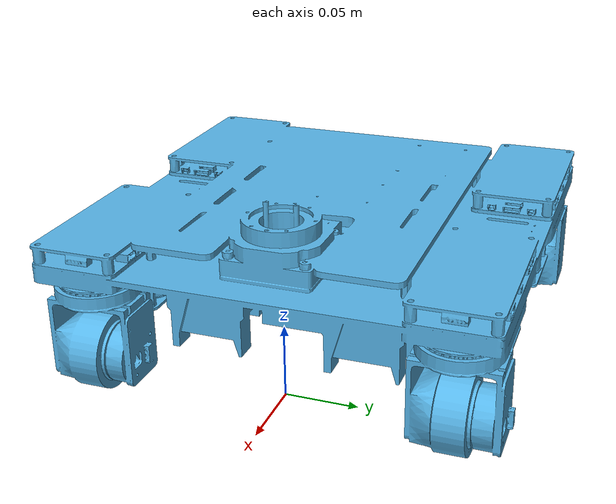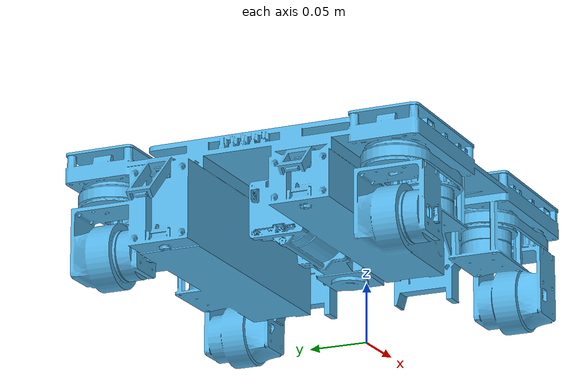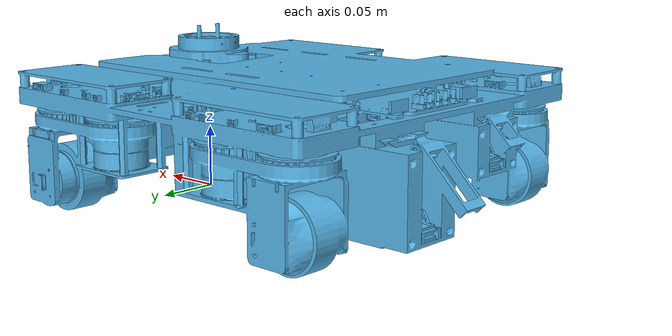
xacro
<?xml version="1.0"?>

<robot xmlns:xacro="http://www.ros.org/wiki/xacro"  name="manipulator">

  <link name="world"/>

  <link name="base_link">
    <visual>
      <origin rpy="0 0 0" xyz="0 0 0"/>
      <geometry>
        <mesh filename="package://manipulator_description/meshes/base_link.STL"/>
      </geometry>
    </visual>
  </link>

  <joint name="virtual_joint" type="fixed">
    <parent link="world"/>
    <child link="base_link"/>
    <origin rpy="0 0 0" xyz="0 0 0"/>
  </joint>
</robot>
